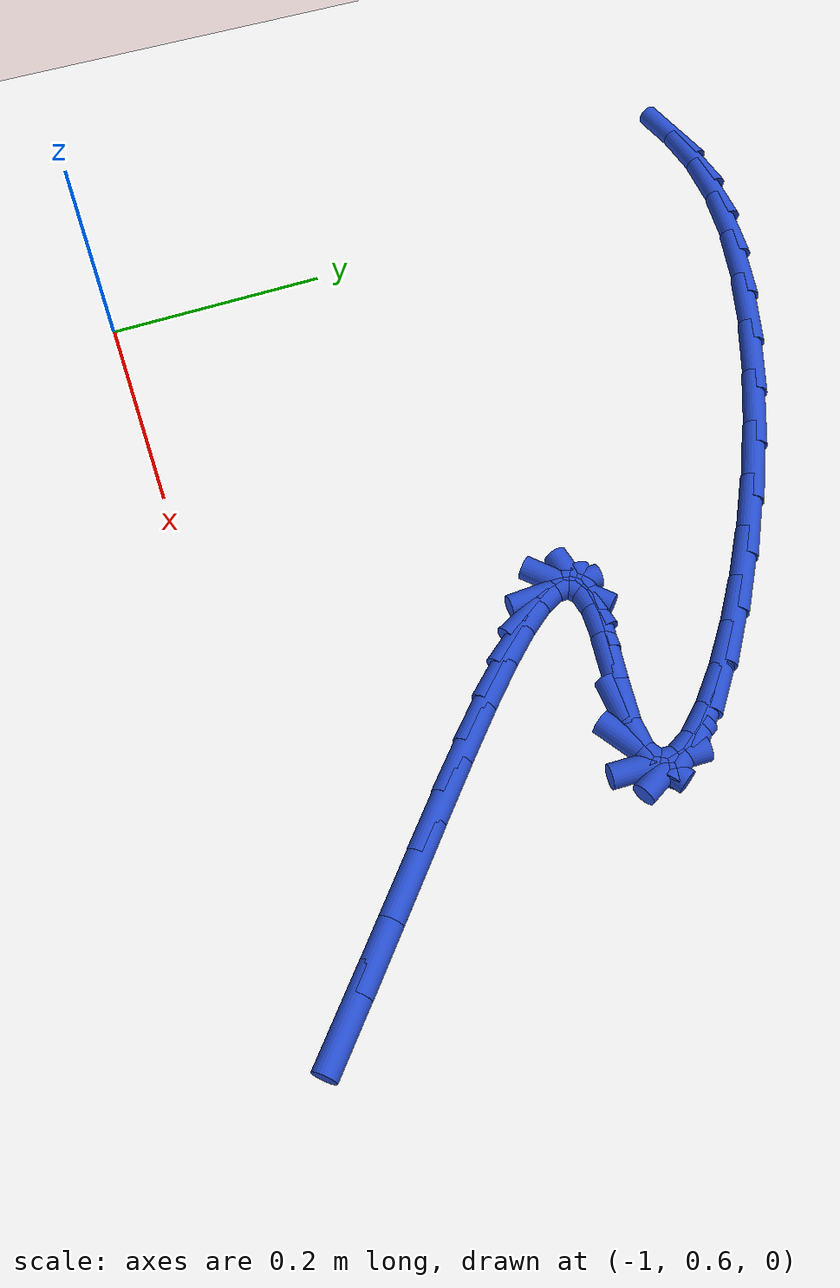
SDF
<sdf version="1.6">
 <world name="default">
  <model name="ground_plane">
   <static>1</static>
   <link name="link">
    <collision name="collision">
     <geometry><plane><normal>0 0 1</normal><size>100 100</size></plane></geometry>
     <surface><friction><ode><mu>100</mu><mu2>50</mu2></ode></friction></surface>
    </collision>
    <visual name="visual">
     <cast_shadows>0</cast_shadows>
     <geometry><plane><normal>0 0 1</normal><size>100 100</size></plane></geometry>
     <material>
      <script><uri>file://media/materials/scripts/gazebo.material</uri><name>Gazebo/WhiteGlow</name></script>
     </material>
    </visual>
   </link>
  </model>
  <model name="line">
   <link name="link_16">
    <pose>-0.32931413428287637 0.619413916587287 0.01 0 1.57 -0.7314711626433812</pose>
    <collision name="collision">
     <geometry><cylinder><radius>0.01</radius><length>0.08</length></cylinder></geometry>
    </collision>
    <visual name="visual">
     <material>
      <script><name>Gazebo/Blue</name><uri>file://media/materials/scripts/gazebo.material</uri></script>
     </material>
     <geometry><cylinder><radius>0.01</radius><length>0.08</length></cylinder></geometry>
    </visual>
   </link>
   <link name="link_17">
    <pose>-0.3719153622443187 0.6576515181239674 0.01 0 1.57 -0.7259887604627213</pose>
    <collision name="collision">
     <geometry><cylinder><radius>0.01</radius><length>0.08</length></cylinder></geometry>
    </collision>
    <visual name="visual">
     <material>
      <script><name>Gazebo/Blue</name><uri>file://media/materials/scripts/gazebo.material</uri></script>
     </material>
     <geometry><cylinder><radius>0.01</radius><length>0.08</length></cylinder></geometry>
    </visual>
   </link>
   <link name="link_18">
    <pose>-0.4131828650748997 0.6942854883533769 0.01 0 1.57 -0.726031458598725</pose>
    <collision name="collision">
     <geometry><cylinder><radius>0.01</radius><length>0.08</length></cylinder></geometry>
    </collision>
    <visual name="visual">
     <material>
      <script><name>Gazebo/Blue</name><uri>file://media/materials/scripts/gazebo.material</uri></script>
     </material>
     <geometry><cylinder><radius>0.01</radius><length>0.08</length></cylinder></geometry>
    </visual>
   </link>
   <link name="link_19">
    <pose>-0.45228036591381066 0.7289960903888975 0.01 0 1.57 -0.7325915159307944</pose>
    <collision name="collision">
     <geometry><cylinder><radius>0.01</radius><length>0.08</length></cylinder></geometry>
    </collision>
    <visual name="visual">
     <material>
      <script><name>Gazebo/Blue</name><uri>file://media/materials/scripts/gazebo.material</uri></script>
     </material>
     <geometry><cylinder><radius>0.01</radius><length>0.08</length></cylinder></geometry>
    </visual>
   </link>
   <link name="link_20">
    <pose>-0.48837158790024293 0.7614635873439111 0.01 0 1.57 -0.7477026566951458</pose>
    <collision name="collision">
     <geometry><cylinder><radius>0.01</radius><length>0.08</length></cylinder></geometry>
    </collision>
    <visual name="visual">
     <material>
      <script><name>Gazebo/Blue</name><uri>file://media/materials/scripts/gazebo.material</uri></script>
     </material>
     <geometry><cylinder><radius>0.01</radius><length>0.08</length></cylinder></geometry>
    </visual>
   </link>
   <link name="link_21">
    <pose>-0.520620254173387 0.7913682423317991 0.01 0 1.57 -0.7753648235506219</pose>
    <collision name="collision">
     <geometry><cylinder><radius>0.01</radius><length>0.08</length></cylinder></geometry>
    </collision>
    <visual name="visual">
     <material>
      <script><name>Gazebo/Blue</name><uri>file://media/materials/scripts/gazebo.material</uri></script>
     </material>
     <geometry><cylinder><radius>0.01</radius><length>0.08</length></cylinder></geometry>
    </visual>
   </link>
   <link name="link_22">
    <pose>-0.5481900878724346 0.8183903184659436 0.01 0 1.57 -0.8238545287976053</pose>
    <collision name="collision">
     <geometry><cylinder><radius>0.01</radius><length>0.08</length></cylinder></geometry>
    </collision>
    <visual name="visual">
     <material>
      <script><name>Gazebo/Blue</name><uri>file://media/materials/scripts/gazebo.material</uri></script>
     </material>
     <geometry><cylinder><radius>0.01</radius><length>0.08</length></cylinder></geometry>
    </visual>
   </link>
   <link name="link_23">
    <pose>-0.5702448121365773 0.842210078859727 0.01 0 1.57 -0.9123297264157438</pose>
    <collision name="collision">
     <geometry><cylinder><radius>0.01</radius><length>0.08</length></cylinder></geometry>
    </collision>
    <visual name="visual">
     <material>
      <script><name>Gazebo/Blue</name><uri>file://media/materials/scripts/gazebo.material</uri></script>
     </material>
     <geometry><cylinder><radius>0.01</radius><length>0.08</length></cylinder></geometry>
    </visual>
   </link>
   <link name="link_24">
    <pose>-0.585948150105005 0.8625077866265303 0.01 0 1.57 -1.0932595328112906</pose>
    <collision name="collision">
     <geometry><cylinder><radius>0.01</radius><length>0.08</length></cylinder></geometry>
    </collision>
    <visual name="visual">
     <material>
      <script><name>Gazebo/Blue</name><uri>file://media/materials/scripts/gazebo.material</uri></script>
     </material>
     <geometry><cylinder><radius>0.01</radius><length>0.08</length></cylinder></geometry>
    </visual>
   </link>
   <link name="link_25">
    <pose>-0.59446382491691 0.8789637048797356 0.01 0 1.57 -1.530820959416895</pose>
    <collision name="collision">
     <geometry><cylinder><radius>0.01</radius><length>0.08</length></cylinder></geometry>
    </collision>
    <visual name="visual">
     <material>
      <script><name>Gazebo/Blue</name><uri>file://media/materials/scripts/gazebo.material</uri></script>
     </material>
     <geometry><cylinder><radius>0.01</radius><length>0.08</length></cylinder></geometry>
    </visual>
   </link>
   <link name="link_26">
    <pose>-0.5949555597114827 0.8912580967327247 0.01 0 1.57 0.7510915891292111</pose>
    <collision name="collision">
     <geometry><cylinder><radius>0.01</radius><length>0.08</length></cylinder></geometry>
    </collision>
    <visual name="visual">
     <material>
      <script><name>Gazebo/Blue</name><uri>file://media/materials/scripts/gazebo.material</uri></script>
     </material>
     <geometry><cylinder><radius>0.01</radius><length>0.08</length></cylinder></geometry>
    </visual>
   </link>
   <link name="link_27">
    <pose>-0.5865870776279147 0.8990712252988797 0.01 0 1.57 0.165218645053021</pose>
    <collision name="collision">
     <geometry><cylinder><radius>0.01</radius><length>0.08</length></cylinder></geometry>
    </collision>
    <visual name="visual">
     <material>
      <script><name>Gazebo/Blue</name><uri>file://media/materials/scripts/gazebo.material</uri></script>
     </material>
     <geometry><cylinder><radius>0.01</radius><length>0.08</length></cylinder></geometry>
    </visual>
   </link>
   <link name="link_28">
    <pose>-0.5685221018053971 0.9020833536915824 0.01 0 1.57 -0.07359959629239929</pose>
    <collision name="collision">
     <geometry><cylinder><radius>0.01</radius><length>0.08</length></cylinder></geometry>
    </collision>
    <visual name="visual">
     <material>
      <script><name>Gazebo/Blue</name><uri>file://media/materials/scripts/gazebo.material</uri></script>
     </material>
     <geometry><cylinder><radius>0.01</radius><length>0.08</length></cylinder></geometry>
    </visual>
   </link>
   <link name="link_29">
    <pose>-0.5399243954971938 0.8999747653389495 0.01 0 1.57 -0.1673033595862107</pose>
    <collision name="collision">
     <geometry><cylinder><radius>0.01</radius><length>0.08</length></cylinder></geometry>
    </collision>
    <visual name="visual">
     <material>
      <script><name>Gazebo/Blue</name><uri>file://media/materials/scripts/gazebo.material</uri></script>
     </material>
     <geometry><cylinder><radius>0.01</radius><length>0.08</length></cylinder></geometry>
    </visual>
   </link>
   <link name="link_30">
    <pose>-0.5023259296184317 0.8936250612204376 0.01 0 1.57 -0.14434320764437078</pose>
    <collision name="collision">
     <geometry><cylinder><radius>0.01</radius><length>0.08</length></cylinder></geometry>
    </collision>
    <visual name="visual">
     <material>
      <script><name>Gazebo/Blue</name><uri>file://media/materials/scripts/gazebo.material</uri></script>
     </material>
     <geometry><cylinder><radius>0.01</radius><length>0.08</length></cylinder></geometry>
    </visual>
   </link>
   <link name="link_31">
    <pose>-0.46601184879638075 0.8883466608693603 0.01 0 1.57 0.03879350655038756</pose>
    <collision name="collision">
     <geometry><cylinder><radius>0.01</radius><length>0.08</length></cylinder></geometry>
    </collision>
    <visual name="visual">
     <material>
      <script><name>Gazebo/Blue</name><uri>file://media/materials/scripts/gazebo.material</uri></script>
     </material>
     <geometry><cylinder><radius>0.01</radius><length>0.08</length></cylinder></geometry>
    </visual>
   </link>
   <link name="link_32">
    <pose>-0.4411278750823785 0.8893124820149695 0.01 0 1.57 0.5539418820419948</pose>
    <collision name="collision">
     <geometry><cylinder><radius>0.01</radius><length>0.08</length></cylinder></geometry>
    </collision>
    <visual name="visual">
     <material>
      <script><name>Gazebo/Blue</name><uri>file://media/materials/scripts/gazebo.material</uri></script>
     </material>
     <geometry><cylinder><radius>0.01</radius><length>0.08</length></cylinder></geometry>
    </visual>
   </link>
   <link name="link_33">
    <pose>-0.42888443552260574 0.8968855637131785 0.01 0 1.57 1.518120523577327</pose>
    <collision name="collision">
     <geometry><cylinder><radius>0.01</radius><length>0.08</length></cylinder></geometry>
    </collision>
    <visual name="visual">
     <material>
      <script><name>Gazebo/Blue</name><uri>file://media/materials/scripts/gazebo.material</uri></script>
     </material>
     <geometry><cylinder><radius>0.01</radius><length>0.08</length></cylinder></geometry>
    </visual>
   </link>
   <link name="link_34">
    <pose>-0.42818316919900706 0.9101861220371084 0.01 0 1.57 -1.0781198537421286</pose>
    <collision name="collision">
     <geometry><cylinder><radius>0.01</radius><length>0.08</length></cylinder></geometry>
    </collision>
    <visual name="visual">
     <material>
      <script><name>Gazebo/Blue</name><uri>file://media/materials/scripts/gazebo.material</uri></script>
     </material>
     <geometry><cylinder><radius>0.01</radius><length>0.08</length></cylinder></geometry>
    </visual>
   </link>
   <link name="link_35">
    <pose>-0.43792571221633325 0.9283343714572547 0.01 0 1.57 -0.8587580761709076</pose>
    <collision name="collision">
     <geometry><cylinder><radius>0.01</radius><length>0.08</length></cylinder></geometry>
    </collision>
    <visual name="visual">
     <material>
      <script><name>Gazebo/Blue</name><uri>file://media/materials/scripts/gazebo.material</uri></script>
     </material>
     <geometry><cylinder><radius>0.01</radius><length>0.08</length></cylinder></geometry>
    </visual>
   </link>
   <link name="link_36">
    <pose>-0.4570137006793342 0.9504505264441112 0.01 0 1.57 -0.744864199887757</pose>
    <collision name="collision">
     <geometry><cylinder><radius>0.01</radius><length>0.08</length></cylinder></geometry>
    </collision>
    <visual name="visual">
     <material>
      <script><name>Gazebo/Blue</name><uri>file://media/materials/scripts/gazebo.material</uri></script>
     </material>
     <geometry><cylinder><radius>0.01</radius><length>0.08</length></cylinder></geometry>
    </visual>
   </link>
   <link name="link_37">
    <pose>-0.484348770692761 0.9756548014681732 0.01 0 1.57 -0.6716491488227655</pose>
    <collision name="collision">
     <geometry><cylinder><radius>0.01</radius><length>0.08</length></cylinder></geometry>
    </collision>
    <visual name="visual">
     <material>
      <script><name>Gazebo/Blue</name><uri>file://media/materials/scripts/gazebo.material</uri></script>
     </material>
     <geometry><cylinder><radius>0.01</radius><length>0.08</length></cylinder></geometry>
    </visual>
   </link>
   <link name="link_38">
    <pose>-0.5188325583613634 1.003067410999935 0.01 0 1.57 -0.6167809873883432</pose>
    <collision name="collision">
     <geometry><cylinder><radius>0.01</radius><length>0.08</length></cylinder></geometry>
    </collision>
    <visual name="visual">
     <material>
      <script><name>Gazebo/Blue</name><uri>file://media/materials/scripts/gazebo.material</uri></script>
     </material>
     <geometry><cylinder><radius>0.01</radius><length>0.08</length></cylinder></geometry>
    </visual>
   </link>
   <link name="link_39">
    <pose>-0.5593666997898923 1.0318085695098913 0.01 0 1.57 -0.5705411907685887</pose>
    <collision name="collision">
     <geometry><cylinder><radius>0.01</radius><length>0.08</length></cylinder></geometry>
    </collision>
    <visual name="visual">
     <material>
      <script><name>Gazebo/Blue</name><uri>file://media/materials/scripts/gazebo.material</uri></script>
     </material>
     <geometry><cylinder><radius>0.01</radius><length>0.08</length></cylinder></geometry>
    </visual>
   </link>
   <link name="link_40">
    <pose>-0.6048528310830981 1.060998491468537 0.01 0 1.57 -0.5277322428226916</pose>
    <collision name="collision">
     <geometry><cylinder><radius>0.01</radius><length>0.08</length></cylinder></geometry>
    </collision>
    <visual name="visual">
     <material>
      <script><name>Gazebo/Blue</name><uri>file://media/materials/scripts/gazebo.material</uri></script>
     </material>
     <geometry><cylinder><radius>0.01</radius><length>0.08</length></cylinder></geometry>
    </visual>
   </link>
   <link name="link_41">
    <pose>-0.6541925883457309 1.0897573913463663 0.01 0 1.57 -0.48492368225102694</pose>
    <collision name="collision">
     <geometry><cylinder><radius>0.01</radius><length>0.08</length></cylinder></geometry>
    </collision>
    <visual name="visual">
     <material>
      <script><name>Gazebo/Blue</name><uri>file://media/materials/scripts/gazebo.material</uri></script>
     </material>
     <geometry><cylinder><radius>0.01</radius><length>0.08</length></cylinder></geometry>
    </visual>
   </link>
   <link name="link_42">
    <pose>-0.706287607682541 1.117205483613874 0.01 0 1.57 -0.4392709476307039</pose>
    <collision name="collision">
     <geometry><cylinder><radius>0.01</radius><length>0.08</length></cylinder></geometry>
    </collision>
    <visual name="visual">
     <material>
      <script><name>Gazebo/Blue</name><uri>file://media/materials/scripts/gazebo.material</uri></script>
     </material>
     <geometry><cylinder><radius>0.01</radius><length>0.08</length></cylinder></geometry>
    </visual>
   </link>
   <link name="link_43">
    <pose>-0.7600395251982793 1.142462982741555 0.01 0 1.57 -0.387832946035166</pose>
    <collision name="collision">
     <geometry><cylinder><radius>0.01</radius><length>0.08</length></cylinder></geometry>
    </collision>
    <visual name="visual">
     <material>
      <script><name>Gazebo/Blue</name><uri>file://media/materials/scripts/gazebo.material</uri></script>
     </material>
     <geometry><cylinder><radius>0.01</radius><length>0.08</length></cylinder></geometry>
    </visual>
   </link>
   <link name="link_44">
    <pose>-0.8143499769976962 1.164650103199904 0.01 0 1.57 -0.3269872247416956</pose>
    <collision name="collision">
     <geometry><cylinder><radius>0.01</radius><length>0.08</length></cylinder></geometry>
    </collision>
    <visual name="visual">
     <material>
      <script><name>Gazebo/Blue</name><uri>file://media/materials/scripts/gazebo.material</uri></script>
     </material>
     <geometry><cylinder><radius>0.01</radius><length>0.08</length></cylinder></geometry>
    </visual>
   </link>
   <link name="link_45">
    <pose>-0.8681205991855417 1.182887059459415 0.01 0 1.57 -0.251717407379841</pose>
    <collision name="collision">
     <geometry><cylinder><radius>0.01</radius><length>0.08</length></cylinder></geometry>
    </collision>
    <visual name="visual">
     <material>
      <script><name>Gazebo/Blue</name><uri>file://media/materials/scripts/gazebo.material</uri></script>
     </material>
     <geometry><cylinder><radius>0.01</radius><length>0.08</length></cylinder></geometry>
    </visual>
   </link>
   <link name="link_46">
    <pose>-0.9202530278665666 1.1962940659905832 0.01 0 1.57 -0.15458499880799778</pose>
    <collision name="collision">
     <geometry><cylinder><radius>0.01</radius><length>0.08</length></cylinder></geometry>
    </collision>
    <visual name="visual">
     <material>
      <script><name>Gazebo/Blue</name><uri>file://media/materials/scripts/gazebo.material</uri></script>
     </material>
     <geometry><cylinder><radius>0.01</radius><length>0.08</length></cylinder></geometry>
    </visual>
   </link>
   <link name="link_47">
    <pose>-0.9696488991455212 1.2039913372639033 0.01 0 1.57 -0.02451533468647624</pose>
    <collision name="collision">
     <geometry><cylinder><radius>0.01</radius><length>0.08</length></cylinder></geometry>
    </collision>
    <visual name="visual">
     <material>
      <script><name>Gazebo/Blue</name><uri>file://media/materials/scripts/gazebo.material</uri></script>
     </material>
     <geometry><cylinder><radius>0.01</radius><length>0.08</length></cylinder></geometry>
    </visual>
   </link>
   <link name="link_48">
    <pose>-1.0152164167254545 1.2051086640555857 0.01 0 1.57 0.128623617829759</pose>
    <collision name="collision">
     <geometry><cylinder><radius>0.01</radius><length>0.08</length></cylinder></geometry>
    </collision>
    <visual name="visual">
     <material>
      <script><name>Gazebo/Blue</name><uri>file://media/materials/scripts/gazebo.material</uri></script>
     </material>
     <geometry><cylinder><radius>0.01</radius><length>0.08</length></cylinder></geometry>
    </visual>
   </link>
   <link name="link_49">
    <pose>-1.0565413429474457 1.199763794742662 0.01 0 1.57 0.2542591177447824</pose>
    <collision name="collision">
     <geometry><cylinder><radius>0.01</radius><length>0.08</length></cylinder></geometry>
    </collision>
    <visual name="visual">
     <material>
      <script><name>Gazebo/Blue</name><uri>file://media/materials/scripts/gazebo.material</uri></script>
     </material>
     <geometry><cylinder><radius>0.01</radius><length>0.08</length></cylinder></geometry>
    </visual>
   </link>
  </model>
 </world>
</sdf>
